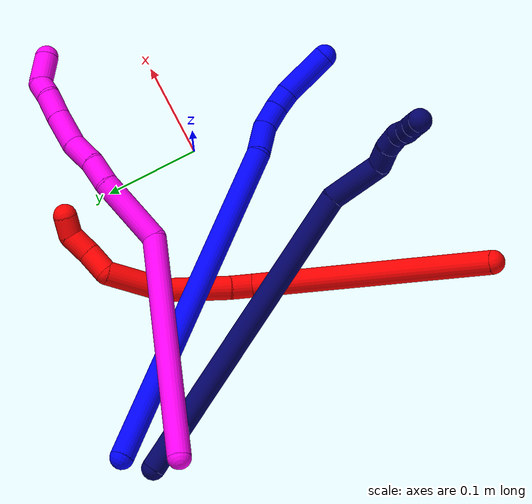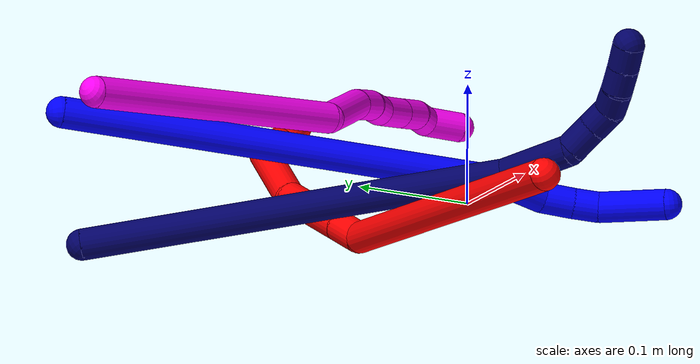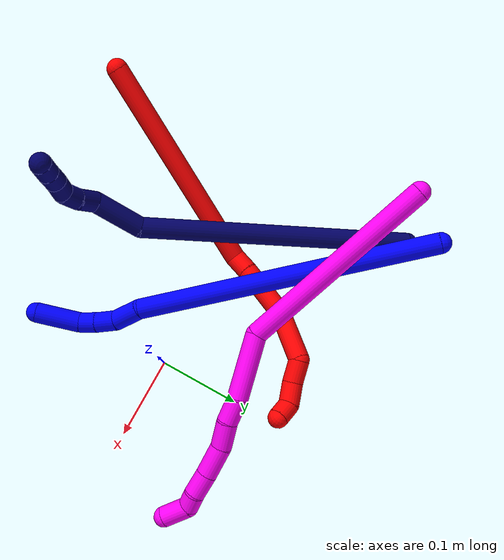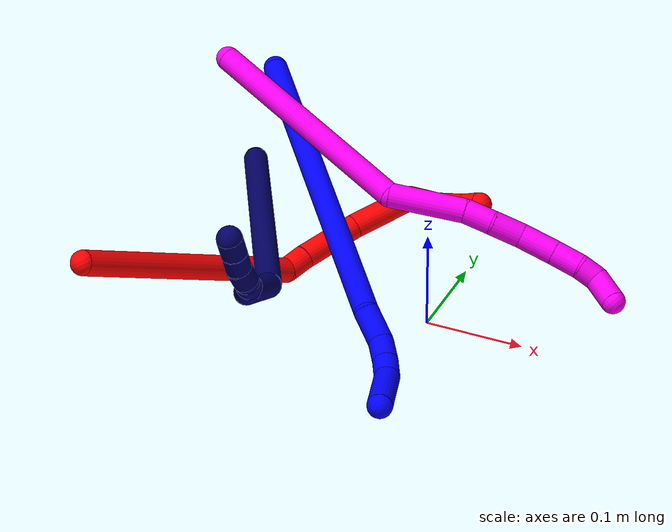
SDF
<sdf version="1.7">
 <world name="default">
  <model name="1">
   <static>0</static>
   <link name="1">
    <collision name="collision-cylinder-e_1_1_4">
     <pose>-0.003515 -0.047083 -0.174667 2.87829 -0.01943 -0.146479</pose>
     <geometry><cylinder><radius>0.0125</radius><length>0.361871</length></cylinder></geometry>
     <surface>
      <friction><ode><mu>1.16</mu><mu2>1.16</mu2><slip1>0</slip1><slip2>0</slip2></ode></friction>
      <contact><ode><kp>1e+06</kp><kd>1</kd><max_vel>0</max_vel><min_depth>0.001</min_depth></ode></contact>
     </surface>
    </collision>
    <visual name="visual-cylinder-e_1_1_4">
     <pose>-0.003515 -0.047083 -0.174667 2.87829 -0.01943 -0.146479</pose>
     <geometry><cylinder><radius>0.0125</radius><length>0.361871</length></cylinder></geometry>
     <material><ambient>0 0 1 1</ambient></material>
    </visual>
    <collision name="collision-cylinder-e_2_4_5">
     <pose>-0.010106 -0.103264 -0.364581 2.60363 -0.171505 -0.604573</pose>
     <geometry><cylinder><radius>0.0125</radius><length>0.036039</length></cylinder></geometry>
     <surface>
      <friction><ode><mu>1.16</mu><mu2>1.16</mu2><slip1>0</slip1><slip2>0</slip2></ode></friction>
      <contact><ode><kp>1e+06</kp><kd>1</kd><max_vel>0</max_vel><min_depth>0.001</min_depth></ode></contact>
     </surface>
    </collision>
    <visual name="visual-cylinder-e_2_4_5">
     <pose>-0.010106 -0.103264 -0.364581 2.60363 -0.171505 -0.604573</pose>
     <geometry><cylinder><radius>0.0125</radius><length>0.036039</length></cylinder></geometry>
     <material><ambient>0 0 1 1</ambient></material>
    </visual>
    <collision name="collision-cylinder-e_3_5_6">
     <pose>-0.012085 -0.115712 -0.392285 2.87886 0.084803 0.621414</pose>
     <geometry><cylinder><radius>0.0125</radius><length>0.025893</length></cylinder></geometry>
     <surface>
      <friction><ode><mu>1.16</mu><mu2>1.16</mu2><slip1>0</slip1><slip2>0</slip2></ode></friction>
      <contact><ode><kp>1e+06</kp><kd>1</kd><max_vel>0</max_vel><min_depth>0.001</min_depth></ode></contact>
     </surface>
    </collision>
    <visual name="visual-cylinder-e_3_5_6">
     <pose>-0.012085 -0.115712 -0.392285 2.87886 0.084803 0.621414</pose>
     <geometry><cylinder><radius>0.0125</radius><length>0.025893</length></cylinder></geometry>
     <material><ambient>0 0 1 1</ambient></material>
    </visual>
    <collision name="collision-cylinder-e_4_6_7">
     <pose>-0.00913 -0.12109 -0.414987 2.94616 0.176141 1.46643</pose>
     <geometry><cylinder><radius>0.0125</radius><length>0.021215</length></cylinder></geometry>
     <surface>
      <friction><ode><mu>1.16</mu><mu2>1.16</mu2><slip1>0</slip1><slip2>0</slip2></ode></friction>
      <contact><ode><kp>1e+06</kp><kd>1</kd><max_vel>0</max_vel><min_depth>0.001</min_depth></ode></contact>
     </surface>
    </collision>
    <visual name="visual-cylinder-e_4_6_7">
     <pose>-0.00913 -0.12109 -0.414987 2.94616 0.176141 1.46643</pose>
     <geometry><cylinder><radius>0.0125</radius><length>0.021215</length></cylinder></geometry>
     <material><ambient>0 0 1 1</ambient></material>
    </visual>
    <collision name="collision-cylinder-e_5_7_2">
     <pose>0.002433 -0.120913 -0.450858 -3.05577 0.360748 -2.6791</pose>
     <geometry><cylinder><radius>0.0125</radius><length>0.054983</length></cylinder></geometry>
     <surface>
      <friction><ode><mu>1.16</mu><mu2>1.16</mu2><slip1>0</slip1><slip2>0</slip2></ode></friction>
      <contact><ode><kp>1e+06</kp><kd>1</kd><max_vel>0</max_vel><min_depth>0.001</min_depth></ode></contact>
     </surface>
    </collision>
    <visual name="visual-cylinder-e_5_7_2">
     <pose>0.002433 -0.120913 -0.450858 -3.05577 0.360748 -2.6791</pose>
     <geometry><cylinder><radius>0.0125</radius><length>0.054983</length></cylinder></geometry>
     <material><ambient>0 0 1 1</ambient></material>
    </visual>
    <collision name="collision-sphere-2">
     <pose>0.012137 -0.118708 -0.476485 0 -0 0</pose>
     <geometry><sphere><radius>0.0125</radius></sphere></geometry>
     <surface>
      <friction><ode><mu>1.16</mu><mu2>1.16</mu2><slip1>0</slip1><slip2>0</slip2></ode></friction>
      <contact><ode><kp>1e+06</kp><kd>1</kd><max_vel>0</max_vel><min_depth>0.001</min_depth></ode></contact>
     </surface>
    </collision>
    <visual name="visual-sphere-2">
     <pose>0.012137 -0.118708 -0.476485 0 -0 0</pose>
     <geometry><sphere><radius>0.0125</radius></sphere></geometry>
     <material><ambient>0 0 1 1</ambient></material>
    </visual>
    <collision name="collision-sphere-7">
     <pose>-0.007271 -0.123118 -0.425231 0 -0 0</pose>
     <geometry><sphere><radius>0.0125</radius></sphere></geometry>
     <surface>
      <friction><ode><mu>1.16</mu><mu2>1.16</mu2><slip1>0</slip1><slip2>0</slip2></ode></friction>
      <contact><ode><kp>1e+06</kp><kd>1</kd><max_vel>0</max_vel><min_depth>0.001</min_depth></ode></contact>
     </surface>
    </collision>
    <visual name="visual-sphere-7">
     <pose>-0.007271 -0.123118 -0.425231 0 -0 0</pose>
     <geometry><sphere><radius>0.0125</radius></sphere></geometry>
     <material><ambient>0 0 1 1</ambient></material>
    </visual>
    <collision name="collision-sphere-6">
     <pose>-0.010988 -0.119062 -0.404742 0 -0 0</pose>
     <geometry><sphere><radius>0.0125</radius></sphere></geometry>
     <surface>
      <friction><ode><mu>1.16</mu><mu2>1.16</mu2><slip1>0</slip1><slip2>0</slip2></ode></friction>
      <contact><ode><kp>1e+06</kp><kd>1</kd><max_vel>0</max_vel><min_depth>0.001</min_depth></ode></contact>
     </surface>
    </collision>
    <visual name="visual-sphere-6">
     <pose>-0.010988 -0.119062 -0.404742 0 -0 0</pose>
     <geometry><sphere><radius>0.0125</radius></sphere></geometry>
     <material><ambient>0 0 1 1</ambient></material>
    </visual>
    <collision name="collision-sphere-5">
     <pose>-0.013181 -0.112361 -0.379828 0 -0 0</pose>
     <geometry><sphere><radius>0.0125</radius></sphere></geometry>
     <surface>
      <friction><ode><mu>1.16</mu><mu2>1.16</mu2><slip1>0</slip1><slip2>0</slip2></ode></friction>
      <contact><ode><kp>1e+06</kp><kd>1</kd><max_vel>0</max_vel><min_depth>0.001</min_depth></ode></contact>
     </surface>
    </collision>
    <visual name="visual-sphere-5">
     <pose>-0.013181 -0.112361 -0.379828 0 -0 0</pose>
     <geometry><sphere><radius>0.0125</radius></sphere></geometry>
     <material><ambient>0 0 1 1</ambient></material>
    </visual>
    <collision name="collision-sphere-1">
     <geometry><sphere><radius>0.0125</radius></sphere></geometry>
     <surface>
      <friction><ode><mu>1.16</mu><mu2>1.16</mu2><slip1>0</slip1><slip2>0</slip2></ode></friction>
      <contact><ode><kp>1e+06</kp><kd>1</kd><max_vel>0</max_vel><min_depth>0.001</min_depth></ode></contact>
     </surface>
    </collision>
    <visual name="visual-sphere-1">
     <geometry><sphere><radius>0.0125</radius></sphere></geometry>
     <material><ambient>0 0 1 1</ambient></material>
    </visual>
    <collision name="collision-sphere-4">
     <pose>-0.007031 -0.094166 -0.349334 0 -0 0</pose>
     <geometry><sphere><radius>0.0125</radius></sphere></geometry>
     <surface>
      <friction><ode><mu>1.16</mu><mu2>1.16</mu2><slip1>0</slip1><slip2>0</slip2></ode></friction>
      <contact><ode><kp>1e+06</kp><kd>1</kd><max_vel>0</max_vel><min_depth>0.001</min_depth></ode></contact>
     </surface>
    </collision>
    <visual name="visual-sphere-4">
     <pose>-0.007031 -0.094166 -0.349334 0 -0 0</pose>
     <geometry><sphere><radius>0.0125</radius></sphere></geometry>
     <material><ambient>0 0 1 1</ambient></material>
    </visual>
    <inertial>
     <pose>-0.004018 -0.065945 -0.240193 0 -0 0</pose>
     <mass>0.5</mass>
     <inertia>
      <ixx>0.003329</ixx>
      <ixy>0</ixy>
      <ixz>0</ixz>
      <iyy>-0.004368</iyy>
      <iyz>0</iyz>
      <izz>0.001068</izz>
     </inertia>
    </inertial>
   </link>
   <pose>-0.267252 0.21652 0.112414 1.62135 0.054611 -2.47783</pose>
  </model>
  <model name="2">
   <static>0</static>
   <link name="2">
    <collision name="collision-cylinder-e_1_1_4">
     <pose>0.063696 0.100035 -0.059546 -2.10772 0.500647 -0.845302</pose>
     <geometry><cylinder><radius>0.0125</radius><length>0.265405</length></cylinder></geometry>
     <surface>
      <friction><ode><mu>1.16</mu><mu2>1.16</mu2><slip1>0</slip1><slip2>0</slip2></ode></friction>
      <contact><ode><kp>1e+06</kp><kd>1</kd><max_vel>0</max_vel><min_depth>0.001</min_depth></ode></contact>
     </surface>
    </collision>
    <visual name="visual-cylinder-e_1_1_4">
     <pose>0.063696 0.100035 -0.059546 -2.10772 0.500647 -0.845302</pose>
     <geometry><cylinder><radius>0.0125</radius><length>0.265405</length></cylinder></geometry>
     <material><ambient>1 0 0 1</ambient></material>
    </visual>
    <collision name="collision-cylinder-e_2_4_5">
     <pose>0.136469 0.208275 -0.118118 -1.45256 0.832268 -0.74814</pose>
     <geometry><cylinder><radius>0.0125</radius><length>0.024549</length></cylinder></geometry>
     <surface>
      <friction><ode><mu>1.16</mu><mu2>1.16</mu2><slip1>0</slip1><slip2>0</slip2></ode></friction>
      <contact><ode><kp>1e+06</kp><kd>1</kd><max_vel>0</max_vel><min_depth>0.001</min_depth></ode></contact>
     </surface>
    </collision>
    <visual name="visual-cylinder-e_2_4_5">
     <pose>0.136469 0.208275 -0.118118 -1.45256 0.832268 -0.74814</pose>
     <geometry><cylinder><radius>0.0125</radius><length>0.024549</length></cylinder></geometry>
     <material><ambient>1 0 0 1</ambient></material>
    </visual>
    <collision name="collision-cylinder-e_3_5_6">
     <pose>0.171133 0.238352 -0.11705 -1.56651 0.863544 -0.860293</pose>
     <geometry><cylinder><radius>0.0125</radius><length>0.067324</length></cylinder></geometry>
     <surface>
      <friction><ode><mu>1.16</mu><mu2>1.16</mu2><slip1>0</slip1><slip2>0</slip2></ode></friction>
      <contact><ode><kp>1e+06</kp><kd>1</kd><max_vel>0</max_vel><min_depth>0.001</min_depth></ode></contact>
     </surface>
    </collision>
    <visual name="visual-cylinder-e_3_5_6">
     <pose>0.171133 0.238352 -0.11705 -1.56651 0.863544 -0.860293</pose>
     <geometry><cylinder><radius>0.0125</radius><length>0.067324</length></cylinder></geometry>
     <material><ambient>1 0 0 1</ambient></material>
    </visual>
    <collision name="collision-cylinder-e_4_6_7">
     <pose>0.227193 0.272216 -0.117689 -1.63183 1.1952 -1.25263</pose>
     <geometry><cylinder><radius>0.0125</radius><length>0.065509</length></cylinder></geometry>
     <surface>
      <friction><ode><mu>1.16</mu><mu2>1.16</mu2><slip1>0</slip1><slip2>0</slip2></ode></friction>
      <contact><ode><kp>1e+06</kp><kd>1</kd><max_vel>0</max_vel><min_depth>0.001</min_depth></ode></contact>
     </surface>
    </collision>
    <visual name="visual-cylinder-e_4_6_7">
     <pose>0.227193 0.272216 -0.117689 -1.63183 1.1952 -1.25263</pose>
     <geometry><cylinder><radius>0.0125</radius><length>0.065509</length></cylinder></geometry>
     <material><ambient>1 0 0 1</ambient></material>
    </visual>
    <collision name="collision-cylinder-e_5_7_8">
     <pose>0.268603 0.283851 -0.127273 3.10121 0.890071 3.05695</pose>
     <geometry><cylinder><radius>0.0125</radius><length>0.028153</length></cylinder></geometry>
     <surface>
      <friction><ode><mu>1.16</mu><mu2>1.16</mu2><slip1>0</slip1><slip2>0</slip2></ode></friction>
      <contact><ode><kp>1e+06</kp><kd>1</kd><max_vel>0</max_vel><min_depth>0.001</min_depth></ode></contact>
     </surface>
    </collision>
    <visual name="visual-cylinder-e_5_7_8">
     <pose>0.268603 0.283851 -0.127273 3.10121 0.890071 3.05695</pose>
     <geometry><cylinder><radius>0.0125</radius><length>0.028153</length></cylinder></geometry>
     <material><ambient>1 0 0 1</ambient></material>
    </visual>
    <collision name="collision-cylinder-e_6_8_9">
     <pose>0.291465 0.283615 -0.142492 -3.1226 1.08029 -3.10992</pose>
     <geometry><cylinder><radius>0.0125</radius><length>0.027034</length></cylinder></geometry>
     <surface>
      <friction><ode><mu>1.16</mu><mu2>1.16</mu2><slip1>0</slip1><slip2>0</slip2></ode></friction>
      <contact><ode><kp>1e+06</kp><kd>1</kd><max_vel>0</max_vel><min_depth>0.001</min_depth></ode></contact>
     </surface>
    </collision>
    <visual name="visual-cylinder-e_6_8_9">
     <pose>0.291465 0.283615 -0.142492 -3.1226 1.08029 -3.10992</pose>
     <geometry><cylinder><radius>0.0125</radius><length>0.027034</length></cylinder></geometry>
     <material><ambient>1 0 0 1</ambient></material>
    </visual>
    <collision name="collision-cylinder-e_7_9_2">
     <pose>0.312266 0.277477 -0.150679 1.85388 0.937463 1.18704</pose>
     <geometry><cylinder><radius>0.0125</radius><length>0.022027</length></cylinder></geometry>
     <surface>
      <friction><ode><mu>1.16</mu><mu2>1.16</mu2><slip1>0</slip1><slip2>0</slip2></ode></friction>
      <contact><ode><kp>1e+06</kp><kd>1</kd><max_vel>0</max_vel><min_depth>0.001</min_depth></ode></contact>
     </surface>
    </collision>
    <visual name="visual-cylinder-e_7_9_2">
     <pose>0.312266 0.277477 -0.150679 1.85388 0.937463 1.18704</pose>
     <geometry><cylinder><radius>0.0125</radius><length>0.022027</length></cylinder></geometry>
     <material><ambient>1 0 0 1</ambient></material>
    </visual>
    <collision name="collision-sphere-2">
     <pose>0.321143 0.271218 -0.152499 0 -0 0</pose>
     <geometry><sphere><radius>0.0125</radius></sphere></geometry>
     <surface>
      <friction><ode><mu>1.16</mu><mu2>1.16</mu2><slip1>0</slip1><slip2>0</slip2></ode></friction>
      <contact><ode><kp>1e+06</kp><kd>1</kd><max_vel>0</max_vel><min_depth>0.001</min_depth></ode></contact>
     </surface>
    </collision>
    <visual name="visual-sphere-2">
     <pose>0.321143 0.271218 -0.152499 0 -0 0</pose>
     <geometry><sphere><radius>0.0125</radius></sphere></geometry>
     <material><ambient>1 0 0 1</ambient></material>
    </visual>
    <collision name="collision-sphere-9">
     <pose>0.303389 0.283735 -0.148858 0 -0 0</pose>
     <geometry><sphere><radius>0.0125</radius></sphere></geometry>
     <surface>
      <friction><ode><mu>1.16</mu><mu2>1.16</mu2><slip1>0</slip1><slip2>0</slip2></ode></friction>
      <contact><ode><kp>1e+06</kp><kd>1</kd><max_vel>0</max_vel><min_depth>0.001</min_depth></ode></contact>
     </surface>
    </collision>
    <visual name="visual-sphere-9">
     <pose>0.303389 0.283735 -0.148858 0 -0 0</pose>
     <geometry><sphere><radius>0.0125</radius></sphere></geometry>
     <material><ambient>1 0 0 1</ambient></material>
    </visual>
    <collision name="collision-sphere-4">
     <pose>0.127392 0.200069 -0.119093 0 -0 0</pose>
     <geometry><sphere><radius>0.0125</radius></sphere></geometry>
     <surface>
      <friction><ode><mu>1.16</mu><mu2>1.16</mu2><slip1>0</slip1><slip2>0</slip2></ode></friction>
      <contact><ode><kp>1e+06</kp><kd>1</kd><max_vel>0</max_vel><min_depth>0.001</min_depth></ode></contact>
     </surface>
    </collision>
    <visual name="visual-sphere-4">
     <pose>0.127392 0.200069 -0.119093 0 -0 0</pose>
     <geometry><sphere><radius>0.0125</radius></sphere></geometry>
     <material><ambient>1 0 0 1</ambient></material>
    </visual>
    <collision name="collision-sphere-1">
     <geometry><sphere><radius>0.0125</radius></sphere></geometry>
     <surface>
      <friction><ode><mu>1.16</mu><mu2>1.16</mu2><slip1>0</slip1><slip2>0</slip2></ode></friction>
      <contact><ode><kp>1e+06</kp><kd>1</kd><max_vel>0</max_vel><min_depth>0.001</min_depth></ode></contact>
     </surface>
    </collision>
    <visual name="visual-sphere-1">
     <geometry><sphere><radius>0.0125</radius></sphere></geometry>
     <material><ambient>1 0 0 1</ambient></material>
    </visual>
    <collision name="collision-sphere-8">
     <pose>0.279542 0.283494 -0.136125 0 -0 0</pose>
     <geometry><sphere><radius>0.0125</radius></sphere></geometry>
     <surface>
      <friction><ode><mu>1.16</mu><mu2>1.16</mu2><slip1>0</slip1><slip2>0</slip2></ode></friction>
      <contact><ode><kp>1e+06</kp><kd>1</kd><max_vel>0</max_vel><min_depth>0.001</min_depth></ode></contact>
     </surface>
    </collision>
    <visual name="visual-sphere-8">
     <pose>0.279542 0.283494 -0.136125 0 -0 0</pose>
     <geometry><sphere><radius>0.0125</radius></sphere></geometry>
     <material><ambient>1 0 0 1</ambient></material>
    </visual>
    <collision name="collision-sphere-5">
     <pose>0.145545 0.21648 -0.117143 0 -0 0</pose>
     <geometry><sphere><radius>0.0125</radius></sphere></geometry>
     <surface>
      <friction><ode><mu>1.16</mu><mu2>1.16</mu2><slip1>0</slip1><slip2>0</slip2></ode></friction>
      <contact><ode><kp>1e+06</kp><kd>1</kd><max_vel>0</max_vel><min_depth>0.001</min_depth></ode></contact>
     </surface>
    </collision>
    <visual name="visual-sphere-5">
     <pose>0.145545 0.21648 -0.117143 0 -0 0</pose>
     <geometry><sphere><radius>0.0125</radius></sphere></geometry>
     <material><ambient>1 0 0 1</ambient></material>
    </visual>
    <collision name="collision-sphere-6">
     <pose>0.196722 0.260223 -0.116956 0 -0 0</pose>
     <geometry><sphere><radius>0.0125</radius></sphere></geometry>
     <surface>
      <friction><ode><mu>1.16</mu><mu2>1.16</mu2><slip1>0</slip1><slip2>0</slip2></ode></friction>
      <contact><ode><kp>1e+06</kp><kd>1</kd><max_vel>0</max_vel><min_depth>0.001</min_depth></ode></contact>
     </surface>
    </collision>
    <visual name="visual-sphere-6">
     <pose>0.196722 0.260223 -0.116956 0 -0 0</pose>
     <geometry><sphere><radius>0.0125</radius></sphere></geometry>
     <material><ambient>1 0 0 1</ambient></material>
    </visual>
    <collision name="collision-sphere-7">
     <pose>0.257664 0.284209 -0.118422 0 -0 0</pose>
     <geometry><sphere><radius>0.0125</radius></sphere></geometry>
     <surface>
      <friction><ode><mu>1.16</mu><mu2>1.16</mu2><slip1>0</slip1><slip2>0</slip2></ode></friction>
      <contact><ode><kp>1e+06</kp><kd>1</kd><max_vel>0</max_vel><min_depth>0.001</min_depth></ode></contact>
     </surface>
    </collision>
    <visual name="visual-sphere-7">
     <pose>0.257664 0.284209 -0.118422 0 -0 0</pose>
     <geometry><sphere><radius>0.0125</radius></sphere></geometry>
     <material><ambient>1 0 0 1</ambient></material>
    </visual>
    <inertial>
     <pose>0.137959 0.174625 -0.090095 0 -0 0</pose>
     <mass>0.5</mass>
     <inertia>
      <ixx>-0.000101</ixx>
      <ixy>0</ixy>
      <ixz>0</ixz>
      <iyy>-0.001033</iyy>
      <iyz>0</iyz>
      <izz>-0.002028</izz>
     </inertia>
    </inertial>
   </link>
   <pose>-0.264702 -0.205137 0.120935 -0.392051 -0.4656 0.499255</pose>
  </model>
  <model name="7">
   <static>0</static>
   <link name="7">
    <collision name="collision-cylinder-e_1_1_4">
     <pose>0.138807 -0.075802 -0.05487 2.19736 0.977625 1.61152</pose>
     <geometry><cylinder><radius>0.0125</radius><length>0.334808</length></cylinder></geometry>
     <surface>
      <friction><ode><mu>1.16</mu><mu2>1.16</mu2><slip1>0</slip1><slip2>0</slip2></ode></friction>
      <contact><ode><kp>1e+06</kp><kd>1</kd><max_vel>0</max_vel><min_depth>0.001</min_depth></ode></contact>
     </surface>
    </collision>
    <visual name="visual-cylinder-e_1_1_4">
     <pose>0.138807 -0.075802 -0.05487 2.19736 0.977625 1.61152</pose>
     <geometry><cylinder><radius>0.0125</radius><length>0.334808</length></cylinder></geometry>
     <material><ambient>0.003922 0 0.403922 1</ambient></material>
    </visual>
    <collision name="collision-cylinder-e_2_4_5">
     <pose>0.292799 -0.176156 -0.119243 1.94008 0.523205 0.744959</pose>
     <geometry><cylinder><radius>0.0125</radius><length>0.060784</length></cylinder></geometry>
     <surface>
      <friction><ode><mu>1.16</mu><mu2>1.16</mu2><slip1>0</slip1><slip2>0</slip2></ode></friction>
      <contact><ode><kp>1e+06</kp><kd>1</kd><max_vel>0</max_vel><min_depth>0.001</min_depth></ode></contact>
     </surface>
    </collision>
    <visual name="visual-cylinder-e_2_4_5">
     <pose>0.292799 -0.176156 -0.119243 1.94008 0.523205 0.744959</pose>
     <geometry><cylinder><radius>0.0125</radius><length>0.060784</length></cylinder></geometry>
     <material><ambient>0.003922 0 0.403922 1</ambient></material>
    </visual>
    <collision name="collision-cylinder-e_3_5_6">
     <pose>0.316116 -0.209377 -0.126177 1.28271 0.732437 0.557786</pose>
     <geometry><cylinder><radius>0.0125</radius><length>0.024321</length></cylinder></geometry>
     <surface>
      <friction><ode><mu>1.16</mu><mu2>1.16</mu2><slip1>0</slip1><slip2>0</slip2></ode></friction>
      <contact><ode><kp>1e+06</kp><kd>1</kd><max_vel>0</max_vel><min_depth>0.001</min_depth></ode></contact>
     </surface>
    </collision>
    <visual name="visual-cylinder-e_3_5_6">
     <pose>0.316116 -0.209377 -0.126177 1.28271 0.732437 0.557786</pose>
     <geometry><cylinder><radius>0.0125</radius><length>0.024321</length></cylinder></geometry>
     <material><ambient>0.003922 0 0.403922 1</ambient></material>
    </visual>
    <collision name="collision-cylinder-e_4_6_7">
     <pose>0.329538 -0.226503 -0.122622 1.45471 0.556064 0.497623</pose>
     <geometry><cylinder><radius>0.0125</radius><length>0.020049</length></cylinder></geometry>
     <surface>
      <friction><ode><mu>1.16</mu><mu2>1.16</mu2><slip1>0</slip1><slip2>0</slip2></ode></friction>
      <contact><ode><kp>1e+06</kp><kd>1</kd><max_vel>0</max_vel><min_depth>0.001</min_depth></ode></contact>
     </surface>
    </collision>
    <visual name="visual-cylinder-e_4_6_7">
     <pose>0.329538 -0.226503 -0.122622 1.45471 0.556064 0.497623</pose>
     <geometry><cylinder><radius>0.0125</radius><length>0.020049</length></cylinder></geometry>
     <material><ambient>0.003922 0 0.403922 1</ambient></material>
    </visual>
    <collision name="collision-cylinder-e_5_7_8">
     <pose>0.335446 -0.244603 -0.119007 1.3047 0.061588 0.047055</pose>
     <geometry><cylinder><radius>0.0125</radius><length>0.020028</length></cylinder></geometry>
     <surface>
      <friction><ode><mu>1.16</mu><mu2>1.16</mu2><slip1>0</slip1><slip2>0</slip2></ode></friction>
      <contact><ode><kp>1e+06</kp><kd>1</kd><max_vel>0</max_vel><min_depth>0.001</min_depth></ode></contact>
     </surface>
    </collision>
    <visual name="visual-cylinder-e_5_7_8">
     <pose>0.335446 -0.244603 -0.119007 1.3047 0.061588 0.047055</pose>
     <geometry><cylinder><radius>0.0125</radius><length>0.020028</length></cylinder></geometry>
     <material><ambient>0.003922 0 0.403922 1</ambient></material>
    </visual>
    <collision name="collision-cylinder-e_6_8_9">
     <pose>0.337509 -0.263249 -0.112264 1.14207 0.145112 0.093321</pose>
     <geometry><cylinder><radius>0.0125</radius><length>0.020006</length></cylinder></geometry>
     <surface>
      <friction><ode><mu>1.16</mu><mu2>1.16</mu2><slip1>0</slip1><slip2>0</slip2></ode></friction>
      <contact><ode><kp>1e+06</kp><kd>1</kd><max_vel>0</max_vel><min_depth>0.001</min_depth></ode></contact>
     </surface>
    </collision>
    <visual name="visual-cylinder-e_6_8_9">
     <pose>0.337509 -0.263249 -0.112264 1.14207 0.145112 0.093321</pose>
     <geometry><cylinder><radius>0.0125</radius><length>0.020006</length></cylinder></geometry>
     <material><ambient>0.003922 0 0.403922 1</ambient></material>
    </visual>
    <collision name="collision-cylinder-e_7_9_2">
     <pose>0.339963 -0.281258 -0.103919 1.13174 0.10092 0.064133</pose>
     <geometry><cylinder><radius>0.0125</radius><length>0.020005</length></cylinder></geometry>
     <surface>
      <friction><ode><mu>1.16</mu><mu2>1.16</mu2><slip1>0</slip1><slip2>0</slip2></ode></friction>
      <contact><ode><kp>1e+06</kp><kd>1</kd><max_vel>0</max_vel><min_depth>0.001</min_depth></ode></contact>
     </surface>
    </collision>
    <visual name="visual-cylinder-e_7_9_2">
     <pose>0.339963 -0.281258 -0.103919 1.13174 0.10092 0.064133</pose>
     <geometry><cylinder><radius>0.0125</radius><length>0.020005</length></cylinder></geometry>
     <material><ambient>0.003922 0 0.403922 1</ambient></material>
    </visual>
    <collision name="collision-sphere-2">
     <pose>0.340971 -0.290266 -0.099689 0 -0 0</pose>
     <geometry><sphere><radius>0.0125</radius></sphere></geometry>
     <surface>
      <friction><ode><mu>1.16</mu><mu2>1.16</mu2><slip1>0</slip1><slip2>0</slip2></ode></friction>
      <contact><ode><kp>1e+06</kp><kd>1</kd><max_vel>0</max_vel><min_depth>0.001</min_depth></ode></contact>
     </surface>
    </collision>
    <visual name="visual-sphere-2">
     <pose>0.340971 -0.290266 -0.099689 0 -0 0</pose>
     <geometry><sphere><radius>0.0125</radius></sphere></geometry>
     <material><ambient>0.003922 0 0.403922 1</ambient></material>
    </visual>
    <collision name="collision-sphere-9">
     <pose>0.338956 -0.272251 -0.10815 0 -0 0</pose>
     <geometry><sphere><radius>0.0125</radius></sphere></geometry>
     <surface>
      <friction><ode><mu>1.16</mu><mu2>1.16</mu2><slip1>0</slip1><slip2>0</slip2></ode></friction>
      <contact><ode><kp>1e+06</kp><kd>1</kd><max_vel>0</max_vel><min_depth>0.001</min_depth></ode></contact>
     </surface>
    </collision>
    <visual name="visual-sphere-9">
     <pose>0.338956 -0.272251 -0.10815 0 -0 0</pose>
     <geometry><sphere><radius>0.0125</radius></sphere></geometry>
     <material><ambient>0.003922 0 0.403922 1</ambient></material>
    </visual>
    <collision name="collision-sphere-4">
     <pose>0.277613 -0.151605 -0.109741 0 -0 0</pose>
     <geometry><sphere><radius>0.0125</radius></sphere></geometry>
     <surface>
      <friction><ode><mu>1.16</mu><mu2>1.16</mu2><slip1>0</slip1><slip2>0</slip2></ode></friction>
      <contact><ode><kp>1e+06</kp><kd>1</kd><max_vel>0</max_vel><min_depth>0.001</min_depth></ode></contact>
     </surface>
    </collision>
    <visual name="visual-sphere-4">
     <pose>0.277613 -0.151605 -0.109741 0 -0 0</pose>
     <geometry><sphere><radius>0.0125</radius></sphere></geometry>
     <material><ambient>0.003922 0 0.403922 1</ambient></material>
    </visual>
    <collision name="collision-sphere-1">
     <geometry><sphere><radius>0.0125</radius></sphere></geometry>
     <surface>
      <friction><ode><mu>1.16</mu><mu2>1.16</mu2><slip1>0</slip1><slip2>0</slip2></ode></friction>
      <contact><ode><kp>1e+06</kp><kd>1</kd><max_vel>0</max_vel><min_depth>0.001</min_depth></ode></contact>
     </surface>
    </collision>
    <visual name="visual-sphere-1">
     <geometry><sphere><radius>0.0125</radius></sphere></geometry>
     <material><ambient>0.003922 0 0.403922 1</ambient></material>
    </visual>
    <collision name="collision-sphere-8">
     <pose>0.336063 -0.254247 -0.116379 0 -0 0</pose>
     <geometry><sphere><radius>0.0125</radius></sphere></geometry>
     <surface>
      <friction><ode><mu>1.16</mu><mu2>1.16</mu2><slip1>0</slip1><slip2>0</slip2></ode></friction>
      <contact><ode><kp>1e+06</kp><kd>1</kd><max_vel>0</max_vel><min_depth>0.001</min_depth></ode></contact>
     </surface>
    </collision>
    <visual name="visual-sphere-8">
     <pose>0.336063 -0.254247 -0.116379 0 -0 0</pose>
     <geometry><sphere><radius>0.0125</radius></sphere></geometry>
     <material><ambient>0.003922 0 0.403922 1</ambient></material>
    </visual>
    <collision name="collision-sphere-5">
     <pose>0.307984 -0.200707 -0.128746 0 -0 0</pose>
     <geometry><sphere><radius>0.0125</radius></sphere></geometry>
     <surface>
      <friction><ode><mu>1.16</mu><mu2>1.16</mu2><slip1>0</slip1><slip2>0</slip2></ode></friction>
      <contact><ode><kp>1e+06</kp><kd>1</kd><max_vel>0</max_vel><min_depth>0.001</min_depth></ode></contact>
     </surface>
    </collision>
    <visual name="visual-sphere-5">
     <pose>0.307984 -0.200707 -0.128746 0 -0 0</pose>
     <geometry><sphere><radius>0.0125</radius></sphere></geometry>
     <material><ambient>0.003922 0 0.403922 1</ambient></material>
    </visual>
    <collision name="collision-sphere-6">
     <pose>0.324247 -0.218046 -0.123608 0 -0 0</pose>
     <geometry><sphere><radius>0.0125</radius></sphere></geometry>
     <surface>
      <friction><ode><mu>1.16</mu><mu2>1.16</mu2><slip1>0</slip1><slip2>0</slip2></ode></friction>
      <contact><ode><kp>1e+06</kp><kd>1</kd><max_vel>0</max_vel><min_depth>0.001</min_depth></ode></contact>
     </surface>
    </collision>
    <visual name="visual-sphere-6">
     <pose>0.324247 -0.218046 -0.123608 0 -0 0</pose>
     <geometry><sphere><radius>0.0125</radius></sphere></geometry>
     <material><ambient>0.003922 0 0.403922 1</ambient></material>
    </visual>
    <collision name="collision-sphere-7">
     <pose>0.33483 -0.23496 -0.121636 0 -0 0</pose>
     <geometry><sphere><radius>0.0125</radius></sphere></geometry>
     <surface>
      <friction><ode><mu>1.16</mu><mu2>1.16</mu2><slip1>0</slip1><slip2>0</slip2></ode></friction>
      <contact><ode><kp>1e+06</kp><kd>1</kd><max_vel>0</max_vel><min_depth>0.001</min_depth></ode></contact>
     </surface>
    </collision>
    <visual name="visual-sphere-7">
     <pose>0.33483 -0.23496 -0.121636 0 -0 0</pose>
     <geometry><sphere><radius>0.0125</radius></sphere></geometry>
     <material><ambient>0.003922 0 0.403922 1</ambient></material>
    </visual>
    <inertial>
     <pose>0.197675 -0.123024 -0.075709 0 -0 0</pose>
     <mass>0.5</mass>
     <inertia>
      <ixx>0.001744</ixx>
      <ixy>0</ixy>
      <ixz>0</ixz>
      <iyy>0.003933</iyy>
      <iyz>0</iyz>
      <izz>-0.001179</izz>
     </inertia>
    </inertial>
   </link>
   <pose>-0.280193 0.191644 0.011531 -0.851713 -0.060584 -0.488572</pose>
  </model>
  <model name="10">
   <static>0</static>
   <link name="10">
    <collision name="collision-cylinder-e_1_1_4">
     <pose>0.038703 -0.018456 -0.113194 2.97997 0.325456 2.22505</pose>
     <geometry><cylinder><radius>0.0125</radius><length>0.242086</length></cylinder></geometry>
     <surface>
      <friction><ode><mu>1.16</mu><mu2>1.16</mu2><slip1>0</slip1><slip2>0</slip2></ode></friction>
      <contact><ode><kp>1e+06</kp><kd>1</kd><max_vel>0</max_vel><min_depth>0.001</min_depth></ode></contact>
     </surface>
    </collision>
    <visual name="visual-cylinder-e_1_1_4">
     <pose>0.038703 -0.018456 -0.113194 2.97997 0.325456 2.22505</pose>
     <geometry><cylinder><radius>0.0125</radius><length>0.242086</length></cylinder></geometry>
     <material><ambient>1 0 0.964706 1</ambient></material>
    </visual>
    <collision name="collision-cylinder-e_2_4_5">
     <pose>0.096602 -0.021983 -0.256773 -2.6849 0.515839 -1.69717</pose>
     <geometry><cylinder><radius>0.0125</radius><length>0.077836</length></cylinder></geometry>
     <surface>
      <friction><ode><mu>1.16</mu><mu2>1.16</mu2><slip1>0</slip1><slip2>0</slip2></ode></friction>
      <contact><ode><kp>1e+06</kp><kd>1</kd><max_vel>0</max_vel><min_depth>0.001</min_depth></ode></contact>
     </surface>
    </collision>
    <visual name="visual-cylinder-e_2_4_5">
     <pose>0.096602 -0.021983 -0.256773 -2.6849 0.515839 -1.69717</pose>
     <geometry><cylinder><radius>0.0125</radius><length>0.077836</length></cylinder></geometry>
     <material><ambient>1 0 0.964706 1</ambient></material>
    </visual>
    <collision name="collision-cylinder-e_3_5_6">
     <pose>0.121065 -0.003179 -0.30011 -2.85087 0.371462 -1.81784</pose>
     <geometry><cylinder><radius>0.0125</radius><length>0.02902</length></cylinder></geometry>
     <surface>
      <friction><ode><mu>1.16</mu><mu2>1.16</mu2><slip1>0</slip1><slip2>0</slip2></ode></friction>
      <contact><ode><kp>1e+06</kp><kd>1</kd><max_vel>0</max_vel><min_depth>0.001</min_depth></ode></contact>
     </surface>
    </collision>
    <visual name="visual-cylinder-e_3_5_6">
     <pose>0.121065 -0.003179 -0.30011 -2.85087 0.371462 -1.81784</pose>
     <geometry><cylinder><radius>0.0125</radius><length>0.02902</length></cylinder></geometry>
     <material><ambient>1 0 0.964706 1</ambient></material>
    </visual>
    <collision name="collision-cylinder-e_4_6_7">
     <pose>0.130042 0.007613 -0.326911 -2.67835 0.235252 -0.928941</pose>
     <geometry><cylinder><radius>0.0125</radius><length>0.031835</length></cylinder></geometry>
     <surface>
      <friction><ode><mu>1.16</mu><mu2>1.16</mu2><slip1>0</slip1><slip2>0</slip2></ode></friction>
      <contact><ode><kp>1e+06</kp><kd>1</kd><max_vel>0</max_vel><min_depth>0.001</min_depth></ode></contact>
     </surface>
    </collision>
    <visual name="visual-cylinder-e_4_6_7">
     <pose>0.130042 0.007613 -0.326911 -2.67835 0.235252 -0.928941</pose>
     <geometry><cylinder><radius>0.0125</radius><length>0.031835</length></cylinder></geometry>
     <material><ambient>1 0 0.964706 1</ambient></material>
    </visual>
    <collision name="collision-cylinder-e_5_7_8">
     <pose>0.140064 0.0184 -0.357969 -2.92044 0.343611 -2.00315</pose>
     <geometry><cylinder><radius>0.0125</radius><length>0.037471</length></cylinder></geometry>
     <surface>
      <friction><ode><mu>1.16</mu><mu2>1.16</mu2><slip1>0</slip1><slip2>0</slip2></ode></friction>
      <contact><ode><kp>1e+06</kp><kd>1</kd><max_vel>0</max_vel><min_depth>0.001</min_depth></ode></contact>
     </surface>
    </collision>
    <visual name="visual-cylinder-e_5_7_8">
     <pose>0.140064 0.0184 -0.357969 -2.92044 0.343611 -2.00315</pose>
     <geometry><cylinder><radius>0.0125</radius><length>0.037471</length></cylinder></geometry>
     <material><ambient>1 0 0.964706 1</ambient></material>
    </visual>
    <collision name="collision-cylinder-e_6_8_9">
     <pose>0.151349 0.024429 -0.388464 -2.9804 0.353956 -2.2932</pose>
     <geometry><cylinder><radius>0.0125</radius><length>0.028698</length></cylinder></geometry>
     <surface>
      <friction><ode><mu>1.16</mu><mu2>1.16</mu2><slip1>0</slip1><slip2>0</slip2></ode></friction>
      <contact><ode><kp>1e+06</kp><kd>1</kd><max_vel>0</max_vel><min_depth>0.001</min_depth></ode></contact>
     </surface>
    </collision>
    <visual name="visual-cylinder-e_6_8_9">
     <pose>0.151349 0.024429 -0.388464 -2.9804 0.353956 -2.2932</pose>
     <geometry><cylinder><radius>0.0125</radius><length>0.028698</length></cylinder></geometry>
     <material><ambient>1 0 0.964706 1</ambient></material>
    </visual>
    <collision name="collision-cylinder-e_7_9_10">
     <pose>0.157617 0.029258 -0.411581 -2.87652 0.126373 -0.886215</pose>
     <geometry><cylinder><radius>0.0125</radius><length>0.020538</length></cylinder></geometry>
     <surface>
      <friction><ode><mu>1.16</mu><mu2>1.16</mu2><slip1>0</slip1><slip2>0</slip2></ode></friction>
      <contact><ode><kp>1e+06</kp><kd>1</kd><max_vel>0</max_vel><min_depth>0.001</min_depth></ode></contact>
     </surface>
    </collision>
    <visual name="visual-cylinder-e_7_9_10">
     <pose>0.157617 0.029258 -0.411581 -2.87652 0.126373 -0.886215</pose>
     <geometry><cylinder><radius>0.0125</radius><length>0.020538</length></cylinder></geometry>
     <material><ambient>1 0 0.964706 1</ambient></material>
    </visual>
    <collision name="collision-cylinder-e_8_10_2">
     <pose>0.162506 0.025176 -0.435759 2.7018 0.222958 0.928644</pose>
     <geometry><cylinder><radius>0.0125</radius><length>0.032517</length></cylinder></geometry>
     <surface>
      <friction><ode><mu>1.16</mu><mu2>1.16</mu2><slip1>0</slip1><slip2>0</slip2></ode></friction>
      <contact><ode><kp>1e+06</kp><kd>1</kd><max_vel>0</max_vel><min_depth>0.001</min_depth></ode></contact>
     </surface>
    </collision>
    <visual name="visual-cylinder-e_8_10_2">
     <pose>0.162506 0.025176 -0.435759 2.7018 0.222958 0.928644</pose>
     <geometry><cylinder><radius>0.0125</radius><length>0.032517</length></cylinder></geometry>
     <material><ambient>1 0 0.964706 1</ambient></material>
    </visual>
    <collision name="collision-sphere-2">
     <pose>0.166101 0.018426 -0.450106 0 -0 0</pose>
     <geometry><sphere><radius>0.0125</radius></sphere></geometry>
     <surface>
      <friction><ode><mu>1.16</mu><mu2>1.16</mu2><slip1>0</slip1><slip2>0</slip2></ode></friction>
      <contact><ode><kp>1e+06</kp><kd>1</kd><max_vel>0</max_vel><min_depth>0.001</min_depth></ode></contact>
     </surface>
    </collision>
    <visual name="visual-sphere-2">
     <pose>0.166101 0.018426 -0.450106 0 -0 0</pose>
     <geometry><sphere><radius>0.0125</radius></sphere></geometry>
     <material><ambient>1 0 0.964706 1</ambient></material>
    </visual>
    <collision name="collision-sphere-10">
     <pose>0.158911 0.031927 -0.421412 0 -0 0</pose>
     <geometry><sphere><radius>0.0125</radius></sphere></geometry>
     <surface>
      <friction><ode><mu>1.16</mu><mu2>1.16</mu2><slip1>0</slip1><slip2>0</slip2></ode></friction>
      <contact><ode><kp>1e+06</kp><kd>1</kd><max_vel>0</max_vel><min_depth>0.001</min_depth></ode></contact>
     </surface>
    </collision>
    <visual name="visual-sphere-10">
     <pose>0.158911 0.031927 -0.421412 0 -0 0</pose>
     <geometry><sphere><radius>0.0125</radius></sphere></geometry>
     <material><ambient>1 0 0.964706 1</ambient></material>
    </visual>
    <collision name="collision-sphere-9">
     <pose>0.156323 0.026589 -0.401749 0 -0 0</pose>
     <geometry><sphere><radius>0.0125</radius></sphere></geometry>
     <surface>
      <friction><ode><mu>1.16</mu><mu2>1.16</mu2><slip1>0</slip1><slip2>0</slip2></ode></friction>
      <contact><ode><kp>1e+06</kp><kd>1</kd><max_vel>0</max_vel><min_depth>0.001</min_depth></ode></contact>
     </surface>
    </collision>
    <visual name="visual-sphere-9">
     <pose>0.156323 0.026589 -0.401749 0 -0 0</pose>
     <geometry><sphere><radius>0.0125</radius></sphere></geometry>
     <material><ambient>1 0 0.964706 1</ambient></material>
    </visual>
    <collision name="collision-sphere-4">
     <pose>0.077405 -0.036912 -0.226389 0 -0 0</pose>
     <geometry><sphere><radius>0.0125</radius></sphere></geometry>
     <surface>
      <friction><ode><mu>1.16</mu><mu2>1.16</mu2><slip1>0</slip1><slip2>0</slip2></ode></friction>
      <contact><ode><kp>1e+06</kp><kd>1</kd><max_vel>0</max_vel><min_depth>0.001</min_depth></ode></contact>
     </surface>
    </collision>
    <visual name="visual-sphere-4">
     <pose>0.077405 -0.036912 -0.226389 0 -0 0</pose>
     <geometry><sphere><radius>0.0125</radius></sphere></geometry>
     <material><ambient>1 0 0.964706 1</ambient></material>
    </visual>
    <collision name="collision-sphere-1">
     <geometry><sphere><radius>0.0125</radius></sphere></geometry>
     <surface>
      <friction><ode><mu>1.16</mu><mu2>1.16</mu2><slip1>0</slip1><slip2>0</slip2></ode></friction>
      <contact><ode><kp>1e+06</kp><kd>1</kd><max_vel>0</max_vel><min_depth>0.001</min_depth></ode></contact>
     </surface>
    </collision>
    <visual name="visual-sphere-1">
     <geometry><sphere><radius>0.0125</radius></sphere></geometry>
     <material><ambient>1 0 0.964706 1</ambient></material>
    </visual>
    <collision name="collision-sphere-8">
     <pose>0.146376 0.022269 -0.375179 0 -0 0</pose>
     <geometry><sphere><radius>0.0125</radius></sphere></geometry>
     <surface>
      <friction><ode><mu>1.16</mu><mu2>1.16</mu2><slip1>0</slip1><slip2>0</slip2></ode></friction>
      <contact><ode><kp>1e+06</kp><kd>1</kd><max_vel>0</max_vel><min_depth>0.001</min_depth></ode></contact>
     </surface>
    </collision>
    <visual name="visual-sphere-8">
     <pose>0.146376 0.022269 -0.375179 0 -0 0</pose>
     <geometry><sphere><radius>0.0125</radius></sphere></geometry>
     <material><ambient>1 0 0.964706 1</ambient></material>
    </visual>
    <collision name="collision-sphere-5">
     <pose>0.115799 -0.007055 -0.287157 0 -0 0</pose>
     <geometry><sphere><radius>0.0125</radius></sphere></geometry>
     <surface>
      <friction><ode><mu>1.16</mu><mu2>1.16</mu2><slip1>0</slip1><slip2>0</slip2></ode></friction>
      <contact><ode><kp>1e+06</kp><kd>1</kd><max_vel>0</max_vel><min_depth>0.001</min_depth></ode></contact>
     </surface>
    </collision>
    <visual name="visual-sphere-5">
     <pose>0.115799 -0.007055 -0.287157 0 -0 0</pose>
     <geometry><sphere><radius>0.0125</radius></sphere></geometry>
     <material><ambient>1 0 0.964706 1</ambient></material>
    </visual>
    <collision name="collision-sphere-6">
     <pose>0.126332 0.000696 -0.313063 0 -0 0</pose>
     <geometry><sphere><radius>0.0125</radius></sphere></geometry>
     <surface>
      <friction><ode><mu>1.16</mu><mu2>1.16</mu2><slip1>0</slip1><slip2>0</slip2></ode></friction>
      <contact><ode><kp>1e+06</kp><kd>1</kd><max_vel>0</max_vel><min_depth>0.001</min_depth></ode></contact>
     </surface>
    </collision>
    <visual name="visual-sphere-6">
     <pose>0.126332 0.000696 -0.313063 0 -0 0</pose>
     <geometry><sphere><radius>0.0125</radius></sphere></geometry>
     <material><ambient>1 0 0.964706 1</ambient></material>
    </visual>
    <collision name="collision-sphere-7">
     <pose>0.133752 0.01453 -0.340758 0 -0 0</pose>
     <geometry><sphere><radius>0.0125</radius></sphere></geometry>
     <surface>
      <friction><ode><mu>1.16</mu><mu2>1.16</mu2><slip1>0</slip1><slip2>0</slip2></ode></friction>
      <contact><ode><kp>1e+06</kp><kd>1</kd><max_vel>0</max_vel><min_depth>0.001</min_depth></ode></contact>
     </surface>
    </collision>
    <visual name="visual-sphere-7">
     <pose>0.133752 0.01453 -0.340758 0 -0 0</pose>
     <geometry><sphere><radius>0.0125</radius></sphere></geometry>
     <material><ambient>1 0 0.964706 1</ambient></material>
    </visual>
    <inertial>
     <pose>0.085309 -0.006438 -0.227378 0 -0 0</pose>
     <mass>0.5</mass>
     <inertia>
      <ixx>0.00017</ixx>
      <ixy>0</ixy>
      <ixz>0</ixz>
      <iyy>0.00163</iyy>
      <iyz>0</iyz>
      <izz>-0.000281</izz>
     </inertia>
    </inertial>
   </link>
   <pose>-0.296919 0.166412 0.142509 -0.273878 -0.927508 0.067357</pose>
  </model>
 </world>
</sdf>
